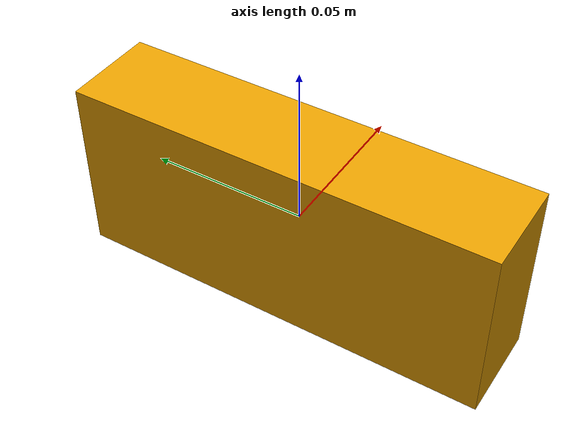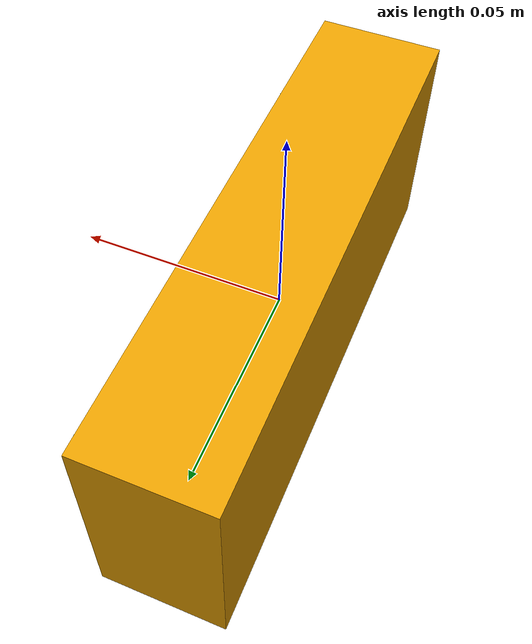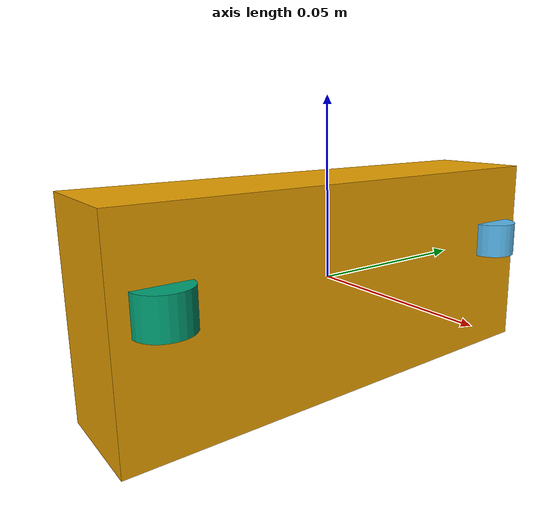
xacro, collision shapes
<?xml version="1.0"?>
<!-- Revolute-Revolute Manipulator -->
<robot name="vi_sensor" xmlns:xacro="http://www.ros.org/wiki/xacro">
  <xacro:property name="namespace" value="vi_sensor" />
  <xacro:property name="PI" value="3.141592654" />
  <!-- Vi Sensor Link -->
  <link name="vi_sensor_link">
    <collision>
      <origin xyz="0 0 0" rpy="0 0 0" />
      <geometry>
        <box size="0.03 0.133 0.057" />
      </geometry>
    </collision>

    <visual>
      <origin xyz="0 0 0" rpy="0 0 0" />
      <geometry>
        <mesh filename="package://rotors_description/meshes/vi_sensor.dae" scale="1 1 1" />
      </geometry>
    </visual>

    <inertial>
      <mass value="0.13" />
      <origin xyz="0 0 0" rpy="0 0 0" />
      <inertia ixx="1e-6" ixy="0" ixz="0" iyy="1e-6" iyz="0" izz="1e-6" />
    </inertial>
  </link>

  <!-- Left Camera Link -->
  <link name="vi_sensor/camera_left_link">
    <collision>
      <origin xyz="0 0 0" rpy="0 0 0" />
      <geometry>
        <cylinder length="0.01" radius="0.007" />
      </geometry>
    </collision>

    <inertial>
      <mass value="1e-5" />
      <origin xyz="0 0 0" rpy="0 ${PI/2} 0" />
      <inertia ixx="1e-6" ixy="0" ixz="0" iyy="1e-6" iyz="0" izz="1e-6" />
    </inertial>
  </link>

  <!-- Right Camera Link -->
  <link name="vi_sensor/camera_right_link">
    <collision>
      <origin xyz="0 0 0" rpy="0 0 0" />
      <geometry>
        <cylinder length="0.01" radius="0.007" />
      </geometry>
    </collision>

    <inertial>
      <mass value="1e-5" />
      <origin xyz="0 0 0" rpy="0 ${PI/2} 0" />
      <inertia ixx="1e-6" ixy="0" ixz="0" iyy="1e-6" iyz="0" izz="1e-6" />
    </inertial>
  </link>

  <!-- Kinect Link -->
  <link name="vi_sensor/kinect_link" />

    <!-- Left Camera Joint -->
  <joint name="camera_left_joint" type="fixed">
    <origin xyz="0.015 0.055 0.0065" rpy="0 0 0" />
    <parent link="vi_sensor_link" />
    <child link="vi_sensor/camera_left_link" />
    <limit upper="0" lower="0" effort="0" velocity="0" />
  </joint>

    <!-- Right Camera Joint -->
  <joint name="camera_right_joint" type="fixed">
    <origin xyz="0.015 -0.055 0.0065" rpy="0 0 0" />
    <parent link="vi_sensor_link" />
    <child link="vi_sensor/camera_right_link" />
    <limit upper="0" lower="0" effort="0" velocity="0" />
  </joint>

  <!-- Kinect Joint -->
  <joint name="kinect_joint" type="fixed">
    <origin xyz="0.015 0 0.0065" rpy="0 0 0" />
    <parent link="vi_sensor_link" />
    <child link="vi_sensor/kinect_link" />
    <limit upper="0" lower="0" effort="0" velocity="0" />
  </joint>

</robot>
